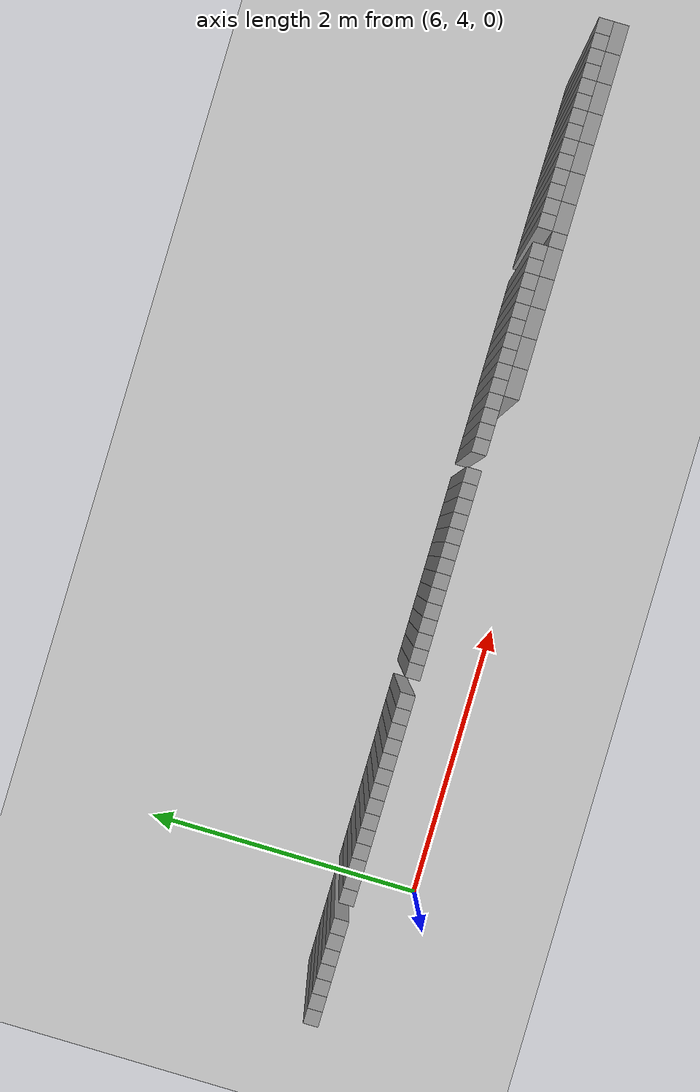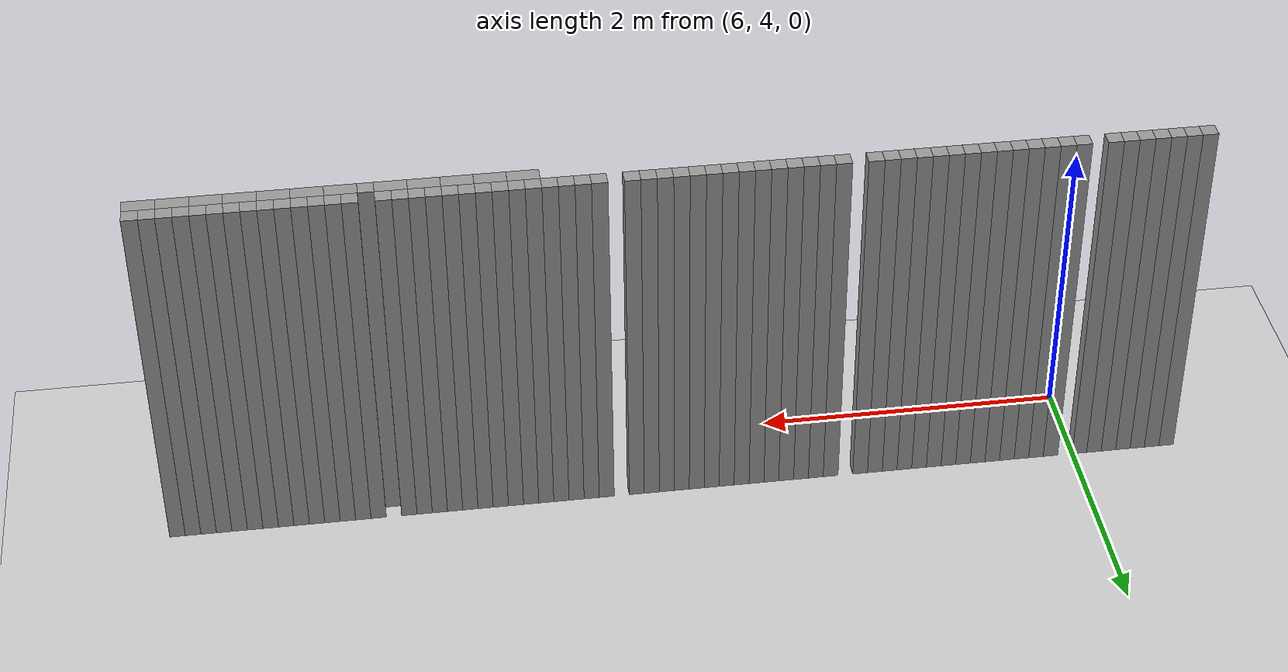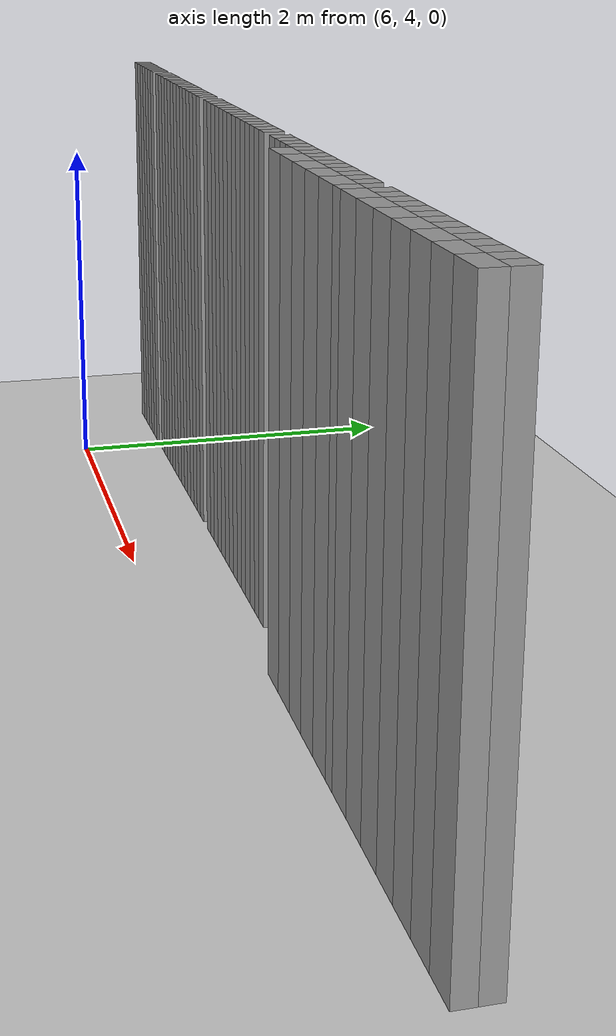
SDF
<sdf version="1.6">
 <world name="default">
  <include><uri>model://sun</uri></include>
  <include><uri>model://ground_plane</uri></include>
  <model name="stage_test">
   <static>1</static>
   <pose>-12 -12 0 0 0 0</pose>
   <link name="Wall_638">
    <pose>17.35 16.55 0 0 0 0</pose>
    <collision name="Wall_638_collision">
     <pose>0 0 1.25 0 0 0</pose>
     <geometry><box><size>0.10000000000000142 0.10000000000000142 2.5</size></box></geometry>
    </collision>
    <visual name="Wall_638_visual">
     <pose>0 0 1.25 0 0 0</pose>
     <geometry><box><size>0.10000000000000142 0.10000000000000142 2.5</size></box></geometry>
     <material>
      <script><uri>file://media/materials/scripts/gazebo.material</uri><name>Gazebo/Grey</name></script>
      <ambient>1 1 1 1</ambient>
     </material>
    </visual>
   </link>
   <link name="Wall_639">
    <pose>17.450000000000003 16.55 0 0 0 0</pose>
    <collision name="Wall_639_collision">
     <pose>0 0 1.25 0 0 0</pose>
     <geometry><box><size>0.09999999999999787 0.10000000000000142 2.5</size></box></geometry>
    </collision>
    <visual name="Wall_639_visual">
     <pose>0 0 1.25 0 0 0</pose>
     <geometry><box><size>0.09999999999999787 0.10000000000000142 2.5</size></box></geometry>
     <material>
      <script><uri>file://media/materials/scripts/gazebo.material</uri><name>Gazebo/Grey</name></script>
      <ambient>1 1 1 1</ambient>
     </material>
    </visual>
   </link>
   <link name="Wall_640">
    <pose>17.55 16.55 0 0 0 0</pose>
    <collision name="Wall_640_collision">
     <pose>0 0 1.25 0 0 0</pose>
     <geometry><box><size>0.10000000000000142 0.10000000000000142 2.5</size></box></geometry>
    </collision>
    <visual name="Wall_640_visual">
     <pose>0 0 1.25 0 0 0</pose>
     <geometry><box><size>0.10000000000000142 0.10000000000000142 2.5</size></box></geometry>
     <material>
      <script><uri>file://media/materials/scripts/gazebo.material</uri><name>Gazebo/Grey</name></script>
      <ambient>1 1 1 1</ambient>
     </material>
    </visual>
   </link>
   <link name="Wall_641">
    <pose>17.65 16.55 0 0 0 0</pose>
    <collision name="Wall_641_collision">
     <pose>0 0 1.25 0 0 0</pose>
     <geometry><box><size>0.09999999999999787 0.10000000000000142 2.5</size></box></geometry>
    </collision>
    <visual name="Wall_641_visual">
     <pose>0 0 1.25 0 0 0</pose>
     <geometry><box><size>0.09999999999999787 0.10000000000000142 2.5</size></box></geometry>
     <material>
      <script><uri>file://media/materials/scripts/gazebo.material</uri><name>Gazebo/Grey</name></script>
      <ambient>1 1 1 1</ambient>
     </material>
    </visual>
   </link>
   <link name="Wall_642">
    <pose>17.75 16.55 0 0 0 0</pose>
    <collision name="Wall_642_collision">
     <pose>0 0 1.25 0 0 0</pose>
     <geometry><box><size>0.10000000000000142 0.10000000000000142 2.5</size></box></geometry>
    </collision>
    <visual name="Wall_642_visual">
     <pose>0 0 1.25 0 0 0</pose>
     <geometry><box><size>0.10000000000000142 0.10000000000000142 2.5</size></box></geometry>
     <material>
      <script><uri>file://media/materials/scripts/gazebo.material</uri><name>Gazebo/Grey</name></script>
      <ambient>1 1 1 1</ambient>
     </material>
    </visual>
   </link>
   <link name="Wall_643">
    <pose>17.85 16.55 0 0 0 0</pose>
    <collision name="Wall_643_collision">
     <pose>0 0 1.25 0 0 0</pose>
     <geometry><box><size>0.10000000000000142 0.10000000000000142 2.5</size></box></geometry>
    </collision>
    <visual name="Wall_643_visual">
     <pose>0 0 1.25 0 0 0</pose>
     <geometry><box><size>0.10000000000000142 0.10000000000000142 2.5</size></box></geometry>
     <material>
      <script><uri>file://media/materials/scripts/gazebo.material</uri><name>Gazebo/Grey</name></script>
      <ambient>1 1 1 1</ambient>
     </material>
    </visual>
   </link>
   <link name="Wall_644">
    <pose>17.950000000000003 16.55 0 0 0 0</pose>
    <collision name="Wall_644_collision">
     <pose>0 0 1.25 0 0 0</pose>
     <geometry><box><size>0.09999999999999787 0.10000000000000142 2.5</size></box></geometry>
    </collision>
    <visual name="Wall_644_visual">
     <pose>0 0 1.25 0 0 0</pose>
     <geometry><box><size>0.09999999999999787 0.10000000000000142 2.5</size></box></geometry>
     <material>
      <script><uri>file://media/materials/scripts/gazebo.material</uri><name>Gazebo/Grey</name></script>
      <ambient>1 1 1 1</ambient>
     </material>
    </visual>
   </link>
   <link name="Wall_695">
    <pose>18.15 16.55 0 0 0 0</pose>
    <collision name="Wall_695_collision">
     <pose>0 0 1.25 0 0 0</pose>
     <geometry><box><size>0.09999999999999787 0.10000000000000142 2.5</size></box></geometry>
    </collision>
    <visual name="Wall_695_visual">
     <pose>0 0 1.25 0 0 0</pose>
     <geometry><box><size>0.09999999999999787 0.10000000000000142 2.5</size></box></geometry>
     <material>
      <script><uri>file://media/materials/scripts/gazebo.material</uri><name>Gazebo/Grey</name></script>
      <ambient>1 1 1 1</ambient>
     </material>
    </visual>
   </link>
   <link name="Wall_696">
    <pose>18.25 16.55 0 0 0 0</pose>
    <collision name="Wall_696_collision">
     <pose>0 0 1.25 0 0 0</pose>
     <geometry><box><size>0.10000000000000142 0.10000000000000142 2.5</size></box></geometry>
    </collision>
    <visual name="Wall_696_visual">
     <pose>0 0 1.25 0 0 0</pose>
     <geometry><box><size>0.10000000000000142 0.10000000000000142 2.5</size></box></geometry>
     <material>
      <script><uri>file://media/materials/scripts/gazebo.material</uri><name>Gazebo/Grey</name></script>
      <ambient>1 1 1 1</ambient>
     </material>
    </visual>
   </link>
   <link name="Wall_697">
    <pose>18.35 16.55 0 0 0 0</pose>
    <collision name="Wall_697_collision">
     <pose>0 0 1.25 0 0 0</pose>
     <geometry><box><size>0.10000000000000142 0.10000000000000142 2.5</size></box></geometry>
    </collision>
    <visual name="Wall_697_visual">
     <pose>0 0 1.25 0 0 0</pose>
     <geometry><box><size>0.10000000000000142 0.10000000000000142 2.5</size></box></geometry>
     <material>
      <script><uri>file://media/materials/scripts/gazebo.material</uri><name>Gazebo/Grey</name></script>
      <ambient>1 1 1 1</ambient>
     </material>
    </visual>
   </link>
   <link name="Wall_698">
    <pose>18.450000000000003 16.55 0 0 0 0</pose>
    <collision name="Wall_698_collision">
     <pose>0 0 1.25 0 0 0</pose>
     <geometry><box><size>0.09999999999999787 0.10000000000000142 2.5</size></box></geometry>
    </collision>
    <visual name="Wall_698_visual">
     <pose>0 0 1.25 0 0 0</pose>
     <geometry><box><size>0.09999999999999787 0.10000000000000142 2.5</size></box></geometry>
     <material>
      <script><uri>file://media/materials/scripts/gazebo.material</uri><name>Gazebo/Grey</name></script>
      <ambient>1 1 1 1</ambient>
     </material>
    </visual>
   </link>
   <link name="Wall_699">
    <pose>18.55 16.55 0 0 0 0</pose>
    <collision name="Wall_699_collision">
     <pose>0 0 1.25 0 0 0</pose>
     <geometry><box><size>0.10000000000000142 0.10000000000000142 2.5</size></box></geometry>
    </collision>
    <visual name="Wall_699_visual">
     <pose>0 0 1.25 0 0 0</pose>
     <geometry><box><size>0.10000000000000142 0.10000000000000142 2.5</size></box></geometry>
     <material>
      <script><uri>file://media/materials/scripts/gazebo.material</uri><name>Gazebo/Grey</name></script>
      <ambient>1 1 1 1</ambient>
     </material>
    </visual>
   </link>
   <link name="Wall_700">
    <pose>18.65 16.55 0 0 0 0</pose>
    <collision name="Wall_700_collision">
     <pose>0 0 1.25 0 0 0</pose>
     <geometry><box><size>0.09999999999999787 0.10000000000000142 2.5</size></box></geometry>
    </collision>
    <visual name="Wall_700_visual">
     <pose>0 0 1.25 0 0 0</pose>
     <geometry><box><size>0.09999999999999787 0.10000000000000142 2.5</size></box></geometry>
     <material>
      <script><uri>file://media/materials/scripts/gazebo.material</uri><name>Gazebo/Grey</name></script>
      <ambient>1 1 1 1</ambient>
     </material>
    </visual>
   </link>
   <link name="Wall_701">
    <pose>18.75 16.55 0 0 0 0</pose>
    <collision name="Wall_701_collision">
     <pose>0 0 1.25 0 0 0</pose>
     <geometry><box><size>0.10000000000000142 0.10000000000000142 2.5</size></box></geometry>
    </collision>
    <visual name="Wall_701_visual">
     <pose>0 0 1.25 0 0 0</pose>
     <geometry><box><size>0.10000000000000142 0.10000000000000142 2.5</size></box></geometry>
     <material>
      <script><uri>file://media/materials/scripts/gazebo.material</uri><name>Gazebo/Grey</name></script>
      <ambient>1 1 1 1</ambient>
     </material>
    </visual>
   </link>
   <link name="Wall_702">
    <pose>18.85 16.55 0 0 0 0</pose>
    <collision name="Wall_702_collision">
     <pose>0 0 1.25 0 0 0</pose>
     <geometry><box><size>0.10000000000000142 0.10000000000000142 2.5</size></box></geometry>
    </collision>
    <visual name="Wall_702_visual">
     <pose>0 0 1.25 0 0 0</pose>
     <geometry><box><size>0.10000000000000142 0.10000000000000142 2.5</size></box></geometry>
     <material>
      <script><uri>file://media/materials/scripts/gazebo.material</uri><name>Gazebo/Grey</name></script>
      <ambient>1 1 1 1</ambient>
     </material>
    </visual>
   </link>
   <link name="Wall_703">
    <pose>18.950000000000003 16.55 0 0 0 0</pose>
    <collision name="Wall_703_collision">
     <pose>0 0 1.25 0 0 0</pose>
     <geometry><box><size>0.09999999999999787 0.10000000000000142 2.5</size></box></geometry>
    </collision>
    <visual name="Wall_703_visual">
     <pose>0 0 1.25 0 0 0</pose>
     <geometry><box><size>0.09999999999999787 0.10000000000000142 2.5</size></box></geometry>
     <material>
      <script><uri>file://media/materials/scripts/gazebo.material</uri><name>Gazebo/Grey</name></script>
      <ambient>1 1 1 1</ambient>
     </material>
    </visual>
   </link>
   <link name="Wall_704">
    <pose>19.05 16.55 0 0 0 0</pose>
    <collision name="Wall_704_collision">
     <pose>0 0 1.25 0 0 0</pose>
     <geometry><box><size>0.10000000000000142 0.10000000000000142 2.5</size></box></geometry>
    </collision>
    <visual name="Wall_704_visual">
     <pose>0 0 1.25 0 0 0</pose>
     <geometry><box><size>0.10000000000000142 0.10000000000000142 2.5</size></box></geometry>
     <material>
      <script><uri>file://media/materials/scripts/gazebo.material</uri><name>Gazebo/Grey</name></script>
      <ambient>1 1 1 1</ambient>
     </material>
    </visual>
   </link>
   <link name="Wall_705">
    <pose>19.150000000000002 16.55 0 0 0 0</pose>
    <collision name="Wall_705_collision">
     <pose>0 0 1.25 0 0 0</pose>
     <geometry><box><size>0.10000000000000142 0.10000000000000142 2.5</size></box></geometry>
    </collision>
    <visual name="Wall_705_visual">
     <pose>0 0 1.25 0 0 0</pose>
     <geometry><box><size>0.10000000000000142 0.10000000000000142 2.5</size></box></geometry>
     <material>
      <script><uri>file://media/materials/scripts/gazebo.material</uri><name>Gazebo/Grey</name></script>
      <ambient>1 1 1 1</ambient>
     </material>
    </visual>
   </link>
   <link name="Wall_706">
    <pose>19.25 16.55 0 0 0 0</pose>
    <collision name="Wall_706_collision">
     <pose>0 0 1.25 0 0 0</pose>
     <geometry><box><size>0.09999999999999787 0.10000000000000142 2.5</size></box></geometry>
    </collision>
    <visual name="Wall_706_visual">
     <pose>0 0 1.25 0 0 0</pose>
     <geometry><box><size>0.09999999999999787 0.10000000000000142 2.5</size></box></geometry>
     <material>
      <script><uri>file://media/materials/scripts/gazebo.material</uri><name>Gazebo/Grey</name></script>
      <ambient>1 1 1 1</ambient>
     </material>
    </visual>
   </link>
   <link name="Wall_707">
    <pose>19.35 16.55 0 0 0 0</pose>
    <collision name="Wall_707_collision">
     <pose>0 0 1.25 0 0 0</pose>
     <geometry><box><size>0.10000000000000142 0.10000000000000142 2.5</size></box></geometry>
    </collision>
    <visual name="Wall_707_visual">
     <pose>0 0 1.25 0 0 0</pose>
     <geometry><box><size>0.10000000000000142 0.10000000000000142 2.5</size></box></geometry>
     <material>
      <script><uri>file://media/materials/scripts/gazebo.material</uri><name>Gazebo/Grey</name></script>
      <ambient>1 1 1 1</ambient>
     </material>
    </visual>
   </link>
   <link name="Wall_708">
    <pose>19.450000000000003 16.55 0 0 0 0</pose>
    <collision name="Wall_708_collision">
     <pose>0 0 1.25 0 0 0</pose>
     <geometry><box><size>0.09999999999999787 0.10000000000000142 2.5</size></box></geometry>
    </collision>
    <visual name="Wall_708_visual">
     <pose>0 0 1.25 0 0 0</pose>
     <geometry><box><size>0.09999999999999787 0.10000000000000142 2.5</size></box></geometry>
     <material>
      <script><uri>file://media/materials/scripts/gazebo.material</uri><name>Gazebo/Grey</name></script>
      <ambient>1 1 1 1</ambient>
     </material>
    </visual>
   </link>
   <link name="Wall_717">
    <pose>19.650000000000002 16.55 0 0 0 0</pose>
    <collision name="Wall_717_collision">
     <pose>0 0 1.25 0 0 0</pose>
     <geometry><box><size>0.10000000000000142 0.10000000000000142 2.5</size></box></geometry>
    </collision>
    <visual name="Wall_717_visual">
     <pose>0 0 1.25 0 0 0</pose>
     <geometry><box><size>0.10000000000000142 0.10000000000000142 2.5</size></box></geometry>
     <material>
      <script><uri>file://media/materials/scripts/gazebo.material</uri><name>Gazebo/Grey</name></script>
      <ambient>1 1 1 1</ambient>
     </material>
    </visual>
   </link>
   <link name="Wall_718">
    <pose>19.75 16.55 0 0 0 0</pose>
    <collision name="Wall_718_collision">
     <pose>0 0 1.25 0 0 0</pose>
     <geometry><box><size>0.09999999999999787 0.10000000000000142 2.5</size></box></geometry>
    </collision>
    <visual name="Wall_718_visual">
     <pose>0 0 1.25 0 0 0</pose>
     <geometry><box><size>0.09999999999999787 0.10000000000000142 2.5</size></box></geometry>
     <material>
      <script><uri>file://media/materials/scripts/gazebo.material</uri><name>Gazebo/Grey</name></script>
      <ambient>1 1 1 1</ambient>
     </material>
    </visual>
   </link>
   <link name="Wall_719">
    <pose>19.85 16.55 0 0 0 0</pose>
    <collision name="Wall_719_collision">
     <pose>0 0 1.25 0 0 0</pose>
     <geometry><box><size>0.10000000000000142 0.10000000000000142 2.5</size></box></geometry>
    </collision>
    <visual name="Wall_719_visual">
     <pose>0 0 1.25 0 0 0</pose>
     <geometry><box><size>0.10000000000000142 0.10000000000000142 2.5</size></box></geometry>
     <material>
      <script><uri>file://media/materials/scripts/gazebo.material</uri><name>Gazebo/Grey</name></script>
      <ambient>1 1 1 1</ambient>
     </material>
    </visual>
   </link>
   <link name="Wall_720">
    <pose>19.950000000000003 16.55 0 0 0 0</pose>
    <collision name="Wall_720_collision">
     <pose>0 0 1.25 0 0 0</pose>
     <geometry><box><size>0.09999999999999787 0.10000000000000142 2.5</size></box></geometry>
    </collision>
    <visual name="Wall_720_visual">
     <pose>0 0 1.25 0 0 0</pose>
     <geometry><box><size>0.09999999999999787 0.10000000000000142 2.5</size></box></geometry>
     <material>
      <script><uri>file://media/materials/scripts/gazebo.material</uri><name>Gazebo/Grey</name></script>
      <ambient>1 1 1 1</ambient>
     </material>
    </visual>
   </link>
   <link name="Wall_721">
    <pose>20.05 16.55 0 0 0 0</pose>
    <collision name="Wall_721_collision">
     <pose>0 0 1.25 0 0 0</pose>
     <geometry><box><size>0.10000000000000142 0.10000000000000142 2.5</size></box></geometry>
    </collision>
    <visual name="Wall_721_visual">
     <pose>0 0 1.25 0 0 0</pose>
     <geometry><box><size>0.10000000000000142 0.10000000000000142 2.5</size></box></geometry>
     <material>
      <script><uri>file://media/materials/scripts/gazebo.material</uri><name>Gazebo/Grey</name></script>
      <ambient>1 1 1 1</ambient>
     </material>
    </visual>
   </link>
   <link name="Wall_722">
    <pose>20.150000000000002 16.55 0 0 0 0</pose>
    <collision name="Wall_722_collision">
     <pose>0 0 1.25 0 0 0</pose>
     <geometry><box><size>0.10000000000000142 0.10000000000000142 2.5</size></box></geometry>
    </collision>
    <visual name="Wall_722_visual">
     <pose>0 0 1.25 0 0 0</pose>
     <geometry><box><size>0.10000000000000142 0.10000000000000142 2.5</size></box></geometry>
     <material>
      <script><uri>file://media/materials/scripts/gazebo.material</uri><name>Gazebo/Grey</name></script>
      <ambient>1 1 1 1</ambient>
     </material>
    </visual>
   </link>
   <link name="Wall_723">
    <pose>20.25 16.55 0 0 0 0</pose>
    <collision name="Wall_723_collision">
     <pose>0 0 1.25 0 0 0</pose>
     <geometry><box><size>0.09999999999999787 0.10000000000000142 2.5</size></box></geometry>
    </collision>
    <visual name="Wall_723_visual">
     <pose>0 0 1.25 0 0 0</pose>
     <geometry><box><size>0.09999999999999787 0.10000000000000142 2.5</size></box></geometry>
     <material>
      <script><uri>file://media/materials/scripts/gazebo.material</uri><name>Gazebo/Grey</name></script>
      <ambient>1 1 1 1</ambient>
     </material>
    </visual>
   </link>
   <link name="Wall_724">
    <pose>20.35 16.55 0 0 0 0</pose>
    <collision name="Wall_724_collision">
     <pose>0 0 1.25 0 0 0</pose>
     <geometry><box><size>0.10000000000000142 0.10000000000000142 2.5</size></box></geometry>
    </collision>
    <visual name="Wall_724_visual">
     <pose>0 0 1.25 0 0 0</pose>
     <geometry><box><size>0.10000000000000142 0.10000000000000142 2.5</size></box></geometry>
     <material>
      <script><uri>file://media/materials/scripts/gazebo.material</uri><name>Gazebo/Grey</name></script>
      <ambient>1 1 1 1</ambient>
     </material>
    </visual>
   </link>
   <link name="Wall_725">
    <pose>20.450000000000003 16.55 0 0 0 0</pose>
    <collision name="Wall_725_collision">
     <pose>0 0 1.25 0 0 0</pose>
     <geometry><box><size>0.09999999999999787 0.10000000000000142 2.5</size></box></geometry>
    </collision>
    <visual name="Wall_725_visual">
     <pose>0 0 1.25 0 0 0</pose>
     <geometry><box><size>0.09999999999999787 0.10000000000000142 2.5</size></box></geometry>
     <material>
      <script><uri>file://media/materials/scripts/gazebo.material</uri><name>Gazebo/Grey</name></script>
      <ambient>1 1 1 1</ambient>
     </material>
    </visual>
   </link>
   <link name="Wall_726">
    <pose>20.55 16.55 0 0 0 0</pose>
    <collision name="Wall_726_collision">
     <pose>0 0 1.25 0 0 0</pose>
     <geometry><box><size>0.10000000000000142 0.10000000000000142 2.5</size></box></geometry>
    </collision>
    <visual name="Wall_726_visual">
     <pose>0 0 1.25 0 0 0</pose>
     <geometry><box><size>0.10000000000000142 0.10000000000000142 2.5</size></box></geometry>
     <material>
      <script><uri>file://media/materials/scripts/gazebo.material</uri><name>Gazebo/Grey</name></script>
      <ambient>1 1 1 1</ambient>
     </material>
    </visual>
   </link>
   <link name="Wall_727">
    <pose>20.650000000000002 16.55 0 0 0 0</pose>
    <collision name="Wall_727_collision">
     <pose>0 0 1.25 0 0 0</pose>
     <geometry><box><size>0.10000000000000142 0.10000000000000142 2.5</size></box></geometry>
    </collision>
    <visual name="Wall_727_visual">
     <pose>0 0 1.25 0 0 0</pose>
     <geometry><box><size>0.10000000000000142 0.10000000000000142 2.5</size></box></geometry>
     <material>
      <script><uri>file://media/materials/scripts/gazebo.material</uri><name>Gazebo/Grey</name></script>
      <ambient>1 1 1 1</ambient>
     </material>
    </visual>
   </link>
   <link name="Wall_728">
    <pose>20.75 16.55 0 0 0 0</pose>
    <collision name="Wall_728_collision">
     <pose>0 0 1.25 0 0 0</pose>
     <geometry><box><size>0.09999999999999787 0.10000000000000142 2.5</size></box></geometry>
    </collision>
    <visual name="Wall_728_visual">
     <pose>0 0 1.25 0 0 0</pose>
     <geometry><box><size>0.09999999999999787 0.10000000000000142 2.5</size></box></geometry>
     <material>
      <script><uri>file://media/materials/scripts/gazebo.material</uri><name>Gazebo/Grey</name></script>
      <ambient>1 1 1 1</ambient>
     </material>
    </visual>
   </link>
   <link name="Wall_729">
    <pose>20.85 16.55 0 0 0 0</pose>
    <collision name="Wall_729_collision">
     <pose>0 0 1.25 0 0 0</pose>
     <geometry><box><size>0.10000000000000142 0.10000000000000142 2.5</size></box></geometry>
    </collision>
    <visual name="Wall_729_visual">
     <pose>0 0 1.25 0 0 0</pose>
     <geometry><box><size>0.10000000000000142 0.10000000000000142 2.5</size></box></geometry>
     <material>
      <script><uri>file://media/materials/scripts/gazebo.material</uri><name>Gazebo/Grey</name></script>
      <ambient>1 1 1 1</ambient>
     </material>
    </visual>
   </link>
   <link name="Wall_730">
    <pose>20.950000000000003 16.55 0 0 0 0</pose>
    <collision name="Wall_730_collision">
     <pose>0 0 1.25 0 0 0</pose>
     <geometry><box><size>0.09999999999999787 0.10000000000000142 2.5</size></box></geometry>
    </collision>
    <visual name="Wall_730_visual">
     <pose>0 0 1.25 0 0 0</pose>
     <geometry><box><size>0.09999999999999787 0.10000000000000142 2.5</size></box></geometry>
     <material>
      <script><uri>file://media/materials/scripts/gazebo.material</uri><name>Gazebo/Grey</name></script>
      <ambient>1 1 1 1</ambient>
     </material>
    </visual>
   </link>
   <link name="Wall_739">
    <pose>21.150000000000002 16.55 0 0 0 0</pose>
    <collision name="Wall_739_collision">
     <pose>0 0 1.25 0 0 0</pose>
     <geometry><box><size>0.10000000000000142 0.10000000000000142 2.5</size></box></geometry>
    </collision>
    <visual name="Wall_739_visual">
     <pose>0 0 1.25 0 0 0</pose>
     <geometry><box><size>0.10000000000000142 0.10000000000000142 2.5</size></box></geometry>
     <material>
      <script><uri>file://media/materials/scripts/gazebo.material</uri><name>Gazebo/Grey</name></script>
      <ambient>1 1 1 1</ambient>
     </material>
    </visual>
   </link>
   <link name="Wall_740">
    <pose>21.25 16.55 0 0 0 0</pose>
    <collision name="Wall_740_collision">
     <pose>0 0 1.25 0 0 0</pose>
     <geometry><box><size>0.09999999999999787 0.10000000000000142 2.5</size></box></geometry>
    </collision>
    <visual name="Wall_740_visual">
     <pose>0 0 1.25 0 0 0</pose>
     <geometry><box><size>0.09999999999999787 0.10000000000000142 2.5</size></box></geometry>
     <material>
      <script><uri>file://media/materials/scripts/gazebo.material</uri><name>Gazebo/Grey</name></script>
      <ambient>1 1 1 1</ambient>
     </material>
    </visual>
   </link>
   <link name="Wall_741">
    <pose>21.35 16.55 0 0 0 0</pose>
    <collision name="Wall_741_collision">
     <pose>0 0 1.25 0 0 0</pose>
     <geometry><box><size>0.10000000000000142 0.10000000000000142 2.5</size></box></geometry>
    </collision>
    <visual name="Wall_741_visual">
     <pose>0 0 1.25 0 0 0</pose>
     <geometry><box><size>0.10000000000000142 0.10000000000000142 2.5</size></box></geometry>
     <material>
      <script><uri>file://media/materials/scripts/gazebo.material</uri><name>Gazebo/Grey</name></script>
      <ambient>1 1 1 1</ambient>
     </material>
    </visual>
   </link>
   <link name="Wall_742">
    <pose>21.450000000000003 16.55 0 0 0 0</pose>
    <collision name="Wall_742_collision">
     <pose>0 0 1.25 0 0 0</pose>
     <geometry><box><size>0.09999999999999787 0.10000000000000142 2.5</size></box></geometry>
    </collision>
    <visual name="Wall_742_visual">
     <pose>0 0 1.25 0 0 0</pose>
     <geometry><box><size>0.09999999999999787 0.10000000000000142 2.5</size></box></geometry>
     <material>
      <script><uri>file://media/materials/scripts/gazebo.material</uri><name>Gazebo/Grey</name></script>
      <ambient>1 1 1 1</ambient>
     </material>
    </visual>
   </link>
   <link name="Wall_743">
    <pose>21.55 16.55 0 0 0 0</pose>
    <collision name="Wall_743_collision">
     <pose>0 0 1.25 0 0 0</pose>
     <geometry><box><size>0.10000000000000142 0.10000000000000142 2.5</size></box></geometry>
    </collision>
    <visual name="Wall_743_visual">
     <pose>0 0 1.25 0 0 0</pose>
     <geometry><box><size>0.10000000000000142 0.10000000000000142 2.5</size></box></geometry>
     <material>
      <script><uri>file://media/materials/scripts/gazebo.material</uri><name>Gazebo/Grey</name></script>
      <ambient>1 1 1 1</ambient>
     </material>
    </visual>
   </link>
   <link name="Wall_744">
    <pose>21.65 16.55 0 0 0 0</pose>
    <collision name="Wall_744_collision">
     <pose>0 0 1.25 0 0 0</pose>
     <geometry><box><size>0.10000000000000142 0.10000000000000142 2.5</size></box></geometry>
    </collision>
    <visual name="Wall_744_visual">
     <pose>0 0 1.25 0 0 0</pose>
     <geometry><box><size>0.10000000000000142 0.10000000000000142 2.5</size></box></geometry>
     <material>
      <script><uri>file://media/materials/scripts/gazebo.material</uri><name>Gazebo/Grey</name></script>
      <ambient>1 1 1 1</ambient>
     </material>
    </visual>
   </link>
   <link name="Wall_745">
    <pose>21.75 16.55 0 0 0 0</pose>
    <collision name="Wall_745_collision">
     <pose>0 0 1.25 0 0 0</pose>
     <geometry><box><size>0.09999999999999787 0.10000000000000142 2.5</size></box></geometry>
    </collision>
    <visual name="Wall_745_visual">
     <pose>0 0 1.25 0 0 0</pose>
     <geometry><box><size>0.09999999999999787 0.10000000000000142 2.5</size></box></geometry>
     <material>
      <script><uri>file://media/materials/scripts/gazebo.material</uri><name>Gazebo/Grey</name></script>
      <ambient>1 1 1 1</ambient>
     </material>
    </visual>
   </link>
   <link name="Wall_746">
    <pose>21.85 16.55 0 0 0 0</pose>
    <collision name="Wall_746_collision">
     <pose>0 0 1.25 0 0 0</pose>
     <geometry><box><size>0.10000000000000142 0.10000000000000142 2.5</size></box></geometry>
    </collision>
    <visual name="Wall_746_visual">
     <pose>0 0 1.25 0 0 0</pose>
     <geometry><box><size>0.10000000000000142 0.10000000000000142 2.5</size></box></geometry>
     <material>
      <script><uri>file://media/materials/scripts/gazebo.material</uri><name>Gazebo/Grey</name></script>
      <ambient>1 1 1 1</ambient>
     </material>
    </visual>
   </link>
   <link name="Wall_747">
    <pose>21.950000000000003 16.55 0 0 0 0</pose>
    <collision name="Wall_747_collision">
     <pose>0 0 1.25 0 0 0</pose>
     <geometry><box><size>0.09999999999999787 0.10000000000000142 2.5</size></box></geometry>
    </collision>
    <visual name="Wall_747_visual">
     <pose>0 0 1.25 0 0 0</pose>
     <geometry><box><size>0.09999999999999787 0.10000000000000142 2.5</size></box></geometry>
     <material>
      <script><uri>file://media/materials/scripts/gazebo.material</uri><name>Gazebo/Grey</name></script>
      <ambient>1 1 1 1</ambient>
     </material>
    </visual>
   </link>
   <link name="Wall_748">
    <pose>22.05 16.55 0 0 0 0</pose>
    <collision name="Wall_748_collision">
     <pose>0 0 1.25 0 0 0</pose>
     <geometry><box><size>0.10000000000000142 0.10000000000000142 2.5</size></box></geometry>
    </collision>
    <visual name="Wall_748_visual">
     <pose>0 0 1.25 0 0 0</pose>
     <geometry><box><size>0.10000000000000142 0.10000000000000142 2.5</size></box></geometry>
     <material>
      <script><uri>file://media/materials/scripts/gazebo.material</uri><name>Gazebo/Grey</name></script>
      <ambient>1 1 1 1</ambient>
     </material>
    </visual>
   </link>
   <link name="Wall_749">
    <pose>22.15 16.55 0 0 0 0</pose>
    <collision name="Wall_749_collision">
     <pose>0 0 1.25 0 0 0</pose>
     <geometry><box><size>0.10000000000000142 0.10000000000000142 2.5</size></box></geometry>
    </collision>
    <visual name="Wall_749_visual">
     <pose>0 0 1.25 0 0 0</pose>
     <geometry><box><size>0.10000000000000142 0.10000000000000142 2.5</size></box></geometry>
     <material>
      <script><uri>file://media/materials/scripts/gazebo.material</uri><name>Gazebo/Grey</name></script>
      <ambient>1 1 1 1</ambient>
     </material>
    </visual>
   </link>
   <link name="Wall_750">
    <pose>22.25 16.55 0 0 0 0</pose>
    <collision name="Wall_750_collision">
     <pose>0 0 1.25 0 0 0</pose>
     <geometry><box><size>0.09999999999999787 0.10000000000000142 2.5</size></box></geometry>
    </collision>
    <visual name="Wall_750_visual">
     <pose>0 0 1.25 0 0 0</pose>
     <geometry><box><size>0.09999999999999787 0.10000000000000142 2.5</size></box></geometry>
     <material>
      <script><uri>file://media/materials/scripts/gazebo.material</uri><name>Gazebo/Grey</name></script>
      <ambient>1 1 1 1</ambient>
     </material>
    </visual>
   </link>
   <link name="Wall_751">
    <pose>22.35 16.55 0 0 0 0</pose>
    <collision name="Wall_751_collision">
     <pose>0 0 1.25 0 0 0</pose>
     <geometry><box><size>0.10000000000000142 0.10000000000000142 2.5</size></box></geometry>
    </collision>
    <visual name="Wall_751_visual">
     <pose>0 0 1.25 0 0 0</pose>
     <geometry><box><size>0.10000000000000142 0.10000000000000142 2.5</size></box></geometry>
     <material>
      <script><uri>file://media/materials/scripts/gazebo.material</uri><name>Gazebo/Grey</name></script>
      <ambient>1 1 1 1</ambient>
     </material>
    </visual>
   </link>
   <link name="Wall_752">
    <pose>22.450000000000003 16.55 0 0 0 0</pose>
    <collision name="Wall_752_collision">
     <pose>0 0 1.25 0 0 0</pose>
     <geometry><box><size>0.09999999999999787 0.10000000000000142 2.5</size></box></geometry>
    </collision>
    <visual name="Wall_752_visual">
     <pose>0 0 1.25 0 0 0</pose>
     <geometry><box><size>0.09999999999999787 0.10000000000000142 2.5</size></box></geometry>
     <material>
      <script><uri>file://media/materials/scripts/gazebo.material</uri><name>Gazebo/Grey</name></script>
      <ambient>1 1 1 1</ambient>
     </material>
    </visual>
   </link>
   <link name="Wall_756">
    <pose>21.6 16.450000000000003 0 0 0 0</pose>
    <collision name="Wall_756_collision">
     <pose>0 0 1.25 0 0 0</pose>
     <geometry><box><size>0.20000000000000284 0.09999999999999787 2.5</size></box></geometry>
    </collision>
    <visual name="Wall_756_visual">
     <pose>0 0 1.25 0 0 0</pose>
     <geometry><box><size>0.20000000000000284 0.09999999999999787 2.5</size></box></geometry>
     <material>
      <script><uri>file://media/materials/scripts/gazebo.material</uri><name>Gazebo/Grey</name></script>
      <ambient>1 1 1 1</ambient>
     </material>
    </visual>
   </link>
   <link name="Wall_757">
    <pose>21.800000000000004 16.450000000000003 0 0 0 0</pose>
    <collision name="Wall_757_collision">
     <pose>0 0 1.25 0 0 0</pose>
     <geometry><box><size>0.1999999999999993 0.09999999999999787 2.5</size></box></geometry>
    </collision>
    <visual name="Wall_757_visual">
     <pose>0 0 1.25 0 0 0</pose>
     <geometry><box><size>0.1999999999999993 0.09999999999999787 2.5</size></box></geometry>
     <material>
      <script><uri>file://media/materials/scripts/gazebo.material</uri><name>Gazebo/Grey</name></script>
      <ambient>1 1 1 1</ambient>
     </material>
    </visual>
   </link>
   <link name="Wall_758">
    <pose>22.0 16.450000000000003 0 0 0 0</pose>
    <collision name="Wall_758_collision">
     <pose>0 0 1.25 0 0 0</pose>
     <geometry><box><size>0.1999999999999993 0.09999999999999787 2.5</size></box></geometry>
    </collision>
    <visual name="Wall_758_visual">
     <pose>0 0 1.25 0 0 0</pose>
     <geometry><box><size>0.1999999999999993 0.09999999999999787 2.5</size></box></geometry>
     <material>
      <script><uri>file://media/materials/scripts/gazebo.material</uri><name>Gazebo/Grey</name></script>
      <ambient>1 1 1 1</ambient>
     </material>
    </visual>
   </link>
   <link name="Wall_759">
    <pose>22.200000000000003 16.450000000000003 0 0 0 0</pose>
    <collision name="Wall_759_collision">
     <pose>0 0 1.25 0 0 0</pose>
     <geometry><box><size>0.1999999999999993 0.09999999999999787 2.5</size></box></geometry>
    </collision>
    <visual name="Wall_759_visual">
     <pose>0 0 1.25 0 0 0</pose>
     <geometry><box><size>0.1999999999999993 0.09999999999999787 2.5</size></box></geometry>
     <material>
      <script><uri>file://media/materials/scripts/gazebo.material</uri><name>Gazebo/Grey</name></script>
      <ambient>1 1 1 1</ambient>
     </material>
    </visual>
   </link>
   <link name="Wall_760">
    <pose>22.4 16.450000000000003 0 0 0 0</pose>
    <collision name="Wall_760_collision">
     <pose>0 0 1.25 0 0 0</pose>
     <geometry><box><size>0.1999999999999993 0.09999999999999787 2.5</size></box></geometry>
    </collision>
    <visual name="Wall_760_visual">
     <pose>0 0 1.25 0 0 0</pose>
     <geometry><box><size>0.1999999999999993 0.09999999999999787 2.5</size></box></geometry>
     <material>
      <script><uri>file://media/materials/scripts/gazebo.material</uri><name>Gazebo/Grey</name></script>
      <ambient>1 1 1 1</ambient>
     </material>
    </visual>
   </link>
   <link name="Wall_761">
    <pose>22.65 16.55 0 0 0 0</pose>
    <collision name="Wall_761_collision">
     <pose>0 0 1.25 0 0 0</pose>
     <geometry><box><size>0.10000000000000142 0.10000000000000142 2.5</size></box></geometry>
    </collision>
    <visual name="Wall_761_visual">
     <pose>0 0 1.25 0 0 0</pose>
     <geometry><box><size>0.10000000000000142 0.10000000000000142 2.5</size></box></geometry>
     <material>
      <script><uri>file://media/materials/scripts/gazebo.material</uri><name>Gazebo/Grey</name></script>
      <ambient>1 1 1 1</ambient>
     </material>
    </visual>
   </link>
   <link name="Wall_762">
    <pose>22.75 16.55 0 0 0 0</pose>
    <collision name="Wall_762_collision">
     <pose>0 0 1.25 0 0 0</pose>
     <geometry><box><size>0.09999999999999787 0.10000000000000142 2.5</size></box></geometry>
    </collision>
    <visual name="Wall_762_visual">
     <pose>0 0 1.25 0 0 0</pose>
     <geometry><box><size>0.09999999999999787 0.10000000000000142 2.5</size></box></geometry>
     <material>
      <script><uri>file://media/materials/scripts/gazebo.material</uri><name>Gazebo/Grey</name></script>
      <ambient>1 1 1 1</ambient>
     </material>
    </visual>
   </link>
   <link name="Wall_763">
    <pose>22.85 16.55 0 0 0 0</pose>
    <collision name="Wall_763_collision">
     <pose>0 0 1.25 0 0 0</pose>
     <geometry><box><size>0.10000000000000142 0.10000000000000142 2.5</size></box></geometry>
    </collision>
    <visual name="Wall_763_visual">
     <pose>0 0 1.25 0 0 0</pose>
     <geometry><box><size>0.10000000000000142 0.10000000000000142 2.5</size></box></geometry>
     <material>
      <script><uri>file://media/materials/scripts/gazebo.material</uri><name>Gazebo/Grey</name></script>
      <ambient>1 1 1 1</ambient>
     </material>
    </visual>
   </link>
   <link name="Wall_764">
    <pose>22.950000000000003 16.55 0 0 0 0</pose>
    <collision name="Wall_764_collision">
     <pose>0 0 1.25 0 0 0</pose>
     <geometry><box><size>0.09999999999999787 0.10000000000000142 2.5</size></box></geometry>
    </collision>
    <visual name="Wall_764_visual">
     <pose>0 0 1.25 0 0 0</pose>
     <geometry><box><size>0.09999999999999787 0.10000000000000142 2.5</size></box></geometry>
     <material>
      <script><uri>file://media/materials/scripts/gazebo.material</uri><name>Gazebo/Grey</name></script>
      <ambient>1 1 1 1</ambient>
     </material>
    </visual>
   </link>
   <link name="Wall_765">
    <pose>23.05 16.55 0 0 0 0</pose>
    <collision name="Wall_765_collision">
     <pose>0 0 1.25 0 0 0</pose>
     <geometry><box><size>0.10000000000000142 0.10000000000000142 2.5</size></box></geometry>
    </collision>
    <visual name="Wall_765_visual">
     <pose>0 0 1.25 0 0 0</pose>
     <geometry><box><size>0.10000000000000142 0.10000000000000142 2.5</size></box></geometry>
     <material>
      <script><uri>file://media/materials/scripts/gazebo.material</uri><name>Gazebo/Grey</name></script>
      <ambient>1 1 1 1</ambient>
     </material>
    </visual>
   </link>
   <link name="Wall_766">
    <pose>23.15 16.55 0 0 0 0</pose>
    <collision name="Wall_766_collision">
     <pose>0 0 1.25 0 0 0</pose>
     <geometry><box><size>0.10000000000000142 0.10000000000000142 2.5</size></box></geometry>
    </collision>
    <visual name="Wall_766_visual">
     <pose>0 0 1.25 0 0 0</pose>
     <geometry><box><size>0.10000000000000142 0.10000000000000142 2.5</size></box></geometry>
     <material>
      <script><uri>file://media/materials/scripts/gazebo.material</uri><name>Gazebo/Grey</name></script>
      <ambient>1 1 1 1</ambient>
     </material>
    </visual>
   </link>
   <link name="Wall_767">
    <pose>23.25 16.55 0 0 0 0</pose>
    <collision name="Wall_767_collision">
     <pose>0 0 1.25 0 0 0</pose>
     <geometry><box><size>0.09999999999999787 0.10000000000000142 2.5</size></box></geometry>
    </collision>
    <visual name="Wall_767_visual">
     <pose>0 0 1.25 0 0 0</pose>
     <geometry><box><size>0.09999999999999787 0.10000000000000142 2.5</size></box></geometry>
     <material>
      <script><uri>file://media/materials/scripts/gazebo.material</uri><name>Gazebo/Grey</name></script>
      <ambient>1 1 1 1</ambient>
     </material>
    </visual>
   </link>
   <link name="Wall_768">
    <pose>23.35 16.55 0 0 0 0</pose>
    <collision name="Wall_768_collision">
     <pose>0 0 1.25 0 0 0</pose>
     <geometry><box><size>0.10000000000000142 0.10000000000000142 2.5</size></box></geometry>
    </collision>
    <visual name="Wall_768_visual">
     <pose>0 0 1.25 0 0 0</pose>
     <geometry><box><size>0.10000000000000142 0.10000000000000142 2.5</size></box></geometry>
     <material>
      <script><uri>file://media/materials/scripts/gazebo.material</uri><name>Gazebo/Grey</name></script>
      <ambient>1 1 1 1</ambient>
     </material>
    </visual>
   </link>
   <link name="Wall_769">
    <pose>23.450000000000003 16.55 0 0 0 0</pose>
    <collision name="Wall_769_collision">
     <pose>0 0 1.25 0 0 0</pose>
     <geometry><box><size>0.09999999999999787 0.10000000000000142 2.5</size></box></geometry>
    </collision>
    <visual name="Wall_769_visual">
     <pose>0 0 1.25 0 0 0</pose>
     <geometry><box><size>0.09999999999999787 0.10000000000000142 2.5</size></box></geometry>
     <material>
      <script><uri>file://media/materials/scripts/gazebo.material</uri><name>Gazebo/Grey</name></script>
      <ambient>1 1 1 1</ambient>
     </material>
    </visual>
   </link>
   <link name="Wall_770">
    <pose>23.55 16.55 0 0 0 0</pose>
    <collision name="Wall_770_collision">
     <pose>0 0 1.25 0 0 0</pose>
     <geometry><box><size>0.10000000000000142 0.10000000000000142 2.5</size></box></geometry>
    </collision>
    <visual name="Wall_770_visual">
     <pose>0 0 1.25 0 0 0</pose>
     <geometry><box><size>0.10000000000000142 0.10000000000000142 2.5</size></box></geometry>
     <material>
      <script><uri>file://media/materials/scripts/gazebo.material</uri><name>Gazebo/Grey</name></script>
      <ambient>1 1 1 1</ambient>
     </material>
    </visual>
   </link>
   <link name="Wall_771">
    <pose>23.65 16.55 0 0 0 0</pose>
    <collision name="Wall_771_collision">
     <pose>0 0 1.25 0 0 0</pose>
     <geometry><box><size>0.10000000000000142 0.10000000000000142 2.5</size></box></geometry>
    </collision>
    <visual name="Wall_771_visual">
     <pose>0 0 1.25 0 0 0</pose>
     <geometry><box><size>0.10000000000000142 0.10000000000000142 2.5</size></box></geometry>
     <material>
      <script><uri>file://media/materials/scripts/gazebo.material</uri><name>Gazebo/Grey</name></script>
      <ambient>1 1 1 1</ambient>
     </material>
    </visual>
   </link>
   <link name="Wall_772">
    <pose>23.75 16.55 0 0 0 0</pose>
    <collision name="Wall_772_collision">
     <pose>0 0 1.25 0 0 0</pose>
     <geometry><box><size>0.09999999999999787 0.10000000000000142 2.5</size></box></geometry>
    </collision>
    <visual name="Wall_772_visual">
     <pose>0 0 1.25 0 0 0</pose>
     <geometry><box><size>0.09999999999999787 0.10000000000000142 2.5</size></box></geometry>
     <material>
      <script><uri>file://media/materials/scripts/gazebo.material</uri><name>Gazebo/Grey</name></script>
      <ambient>1 1 1 1</ambient>
     </material>
    </visual>
   </link>
   <link name="Wall_773">
    <pose>23.85 16.55 0 0 0 0</pose>
    <collision name="Wall_773_collision">
     <pose>0 0 1.25 0 0 0</pose>
     <geometry><box><size>0.10000000000000142 0.10000000000000142 2.5</size></box></geometry>
    </collision>
    <visual name="Wall_773_visual">
     <pose>0 0 1.25 0 0 0</pose>
     <geometry><box><size>0.10000000000000142 0.10000000000000142 2.5</size></box></geometry>
     <material>
      <script><uri>file://media/materials/scripts/gazebo.material</uri><name>Gazebo/Grey</name></script>
      <ambient>1 1 1 1</ambient>
     </material>
    </visual>
   </link>
   <link name="Wall_774">
    <pose>23.950000000000003 16.55 0 0 0 0</pose>
    <collision name="Wall_774_collision">
     <pose>0 0 1.25 0 0 0</pose>
     <geometry><box><size>0.09999999999999787 0.10000000000000142 2.5</size></box></geometry>
    </collision>
    <visual name="Wall_774_visual">
     <pose>0 0 1.25 0 0 0</pose>
     <geometry><box><size>0.09999999999999787 0.10000000000000142 2.5</size></box></geometry>
     <material>
      <script><uri>file://media/materials/scripts/gazebo.material</uri><name>Gazebo/Grey</name></script>
      <ambient>1 1 1 1</ambient>
     </material>
    </visual>
   </link>
   <link name="Wall_775">
    <pose>22.55 16.450000000000003 0 0 0 0</pose>
    <collision name="Wall_775_collision">
     <pose>0 0 1.25 0 0 0</pose>
     <geometry><box><size>0.10000000000000142 0.09999999999999787 2.5</size></box></geometry>
    </collision>
    <visual name="Wall_775_visual">
     <pose>0 0 1.25 0 0 0</pose>
     <geometry><box><size>0.10000000000000142 0.09999999999999787 2.5</size></box></geometry>
     <material>
      <script><uri>file://media/materials/scripts/gazebo.material</uri><name>Gazebo/Grey</name></script>
      <ambient>1 1 1 1</ambient>
     </material>
    </visual>
   </link>
   <link name="Wall_776">
    <pose>22.700000000000003 16.450000000000003 0 0 0 0</pose>
    <collision name="Wall_776_collision">
     <pose>0 0 1.25 0 0 0</pose>
     <geometry><box><size>0.1999999999999993 0.09999999999999787 2.5</size></box></geometry>
    </collision>
    <visual name="Wall_776_visual">
     <pose>0 0 1.25 0 0 0</pose>
     <geometry><box><size>0.1999999999999993 0.09999999999999787 2.5</size></box></geometry>
     <material>
      <script><uri>file://media/materials/scripts/gazebo.material</uri><name>Gazebo/Grey</name></script>
      <ambient>1 1 1 1</ambient>
     </material>
    </visual>
   </link>
   <link name="Wall_777">
    <pose>22.9 16.450000000000003 0 0 0 0</pose>
    <collision name="Wall_777_collision">
     <pose>0 0 1.25 0 0 0</pose>
     <geometry><box><size>0.1999999999999993 0.09999999999999787 2.5</size></box></geometry>
    </collision>
    <visual name="Wall_777_visual">
     <pose>0 0 1.25 0 0 0</pose>
     <geometry><box><size>0.1999999999999993 0.09999999999999787 2.5</size></box></geometry>
     <material>
      <script><uri>file://media/materials/scripts/gazebo.material</uri><name>Gazebo/Grey</name></script>
      <ambient>1 1 1 1</ambient>
     </material>
    </visual>
   </link>
   <link name="Wall_778">
    <pose>23.1 16.450000000000003 0 0 0 0</pose>
    <collision name="Wall_778_collision">
     <pose>0 0 1.25 0 0 0</pose>
     <geometry><box><size>0.20000000000000284 0.09999999999999787 2.5</size></box></geometry>
    </collision>
    <visual name="Wall_778_visual">
     <pose>0 0 1.25 0 0 0</pose>
     <geometry><box><size>0.20000000000000284 0.09999999999999787 2.5</size></box></geometry>
     <material>
      <script><uri>file://media/materials/scripts/gazebo.material</uri><name>Gazebo/Grey</name></script>
      <ambient>1 1 1 1</ambient>
     </material>
    </visual>
   </link>
   <link name="Wall_779">
    <pose>23.300000000000004 16.450000000000003 0 0 0 0</pose>
    <collision name="Wall_779_collision">
     <pose>0 0 1.25 0 0 0</pose>
     <geometry><box><size>0.1999999999999993 0.09999999999999787 2.5</size></box></geometry>
    </collision>
    <visual name="Wall_779_visual">
     <pose>0 0 1.25 0 0 0</pose>
     <geometry><box><size>0.1999999999999993 0.09999999999999787 2.5</size></box></geometry>
     <material>
      <script><uri>file://media/materials/scripts/gazebo.material</uri><name>Gazebo/Grey</name></script>
      <ambient>1 1 1 1</ambient>
     </material>
    </visual>
   </link>
   <link name="Wall_780">
    <pose>23.5 16.450000000000003 0 0 0 0</pose>
    <collision name="Wall_780_collision">
     <pose>0 0 1.25 0 0 0</pose>
     <geometry><box><size>0.1999999999999993 0.09999999999999787 2.5</size></box></geometry>
    </collision>
    <visual name="Wall_780_visual">
     <pose>0 0 1.25 0 0 0</pose>
     <geometry><box><size>0.1999999999999993 0.09999999999999787 2.5</size></box></geometry>
     <material>
      <script><uri>file://media/materials/scripts/gazebo.material</uri><name>Gazebo/Grey</name></script>
      <ambient>1 1 1 1</ambient>
     </material>
    </visual>
   </link>
   <link name="Wall_781">
    <pose>23.700000000000003 16.450000000000003 0 0 0 0</pose>
    <collision name="Wall_781_collision">
     <pose>0 0 1.25 0 0 0</pose>
     <geometry><box><size>0.1999999999999993 0.09999999999999787 2.5</size></box></geometry>
    </collision>
    <visual name="Wall_781_visual">
     <pose>0 0 1.25 0 0 0</pose>
     <geometry><box><size>0.1999999999999993 0.09999999999999787 2.5</size></box></geometry>
     <material>
      <script><uri>file://media/materials/scripts/gazebo.material</uri><name>Gazebo/Grey</name></script>
      <ambient>1 1 1 1</ambient>
     </material>
    </visual>
   </link>
   <link name="Wall_785">
    <pose>23.9 16.450000000000003 0 0 0 0</pose>
    <collision name="Wall_785_collision">
     <pose>0 0 1.25 0 0 0</pose>
     <geometry><box><size>0.1999999999999993 0.09999999999999787 2.5</size></box></geometry>
    </collision>
    <visual name="Wall_785_visual">
     <pose>0 0 1.25 0 0 0</pose>
     <geometry><box><size>0.1999999999999993 0.09999999999999787 2.5</size></box></geometry>
     <material>
      <script><uri>file://media/materials/scripts/gazebo.material</uri><name>Gazebo/Grey</name></script>
      <ambient>1 1 1 1</ambient>
     </material>
    </visual>
   </link>
  </model>
 </world>
</sdf>
